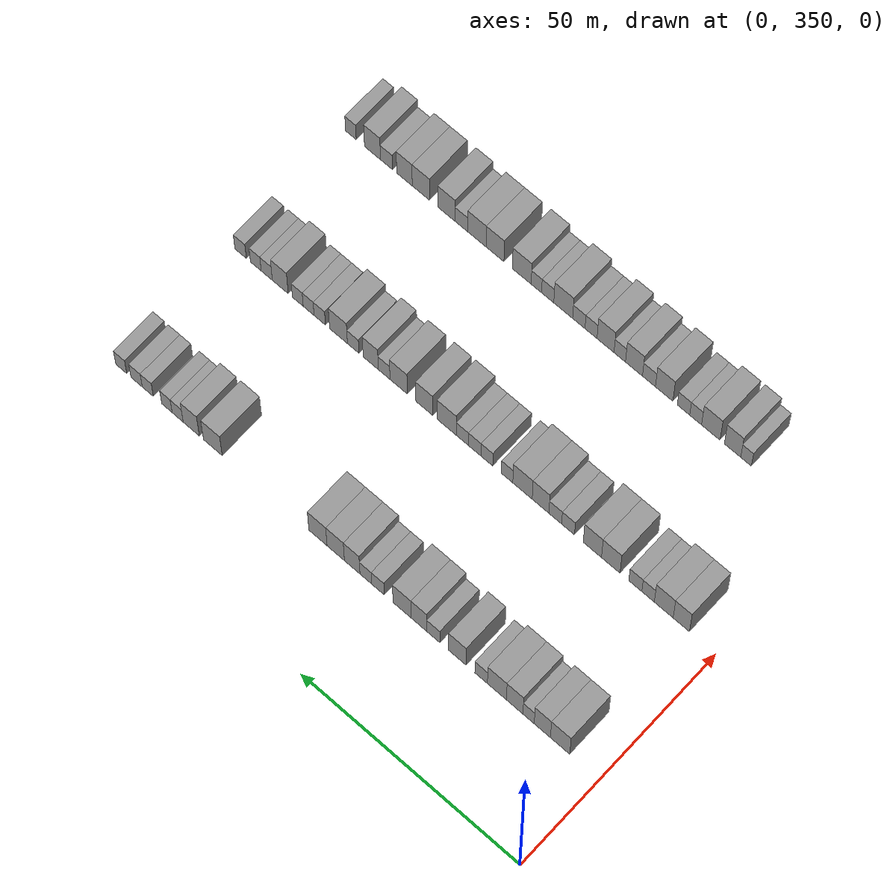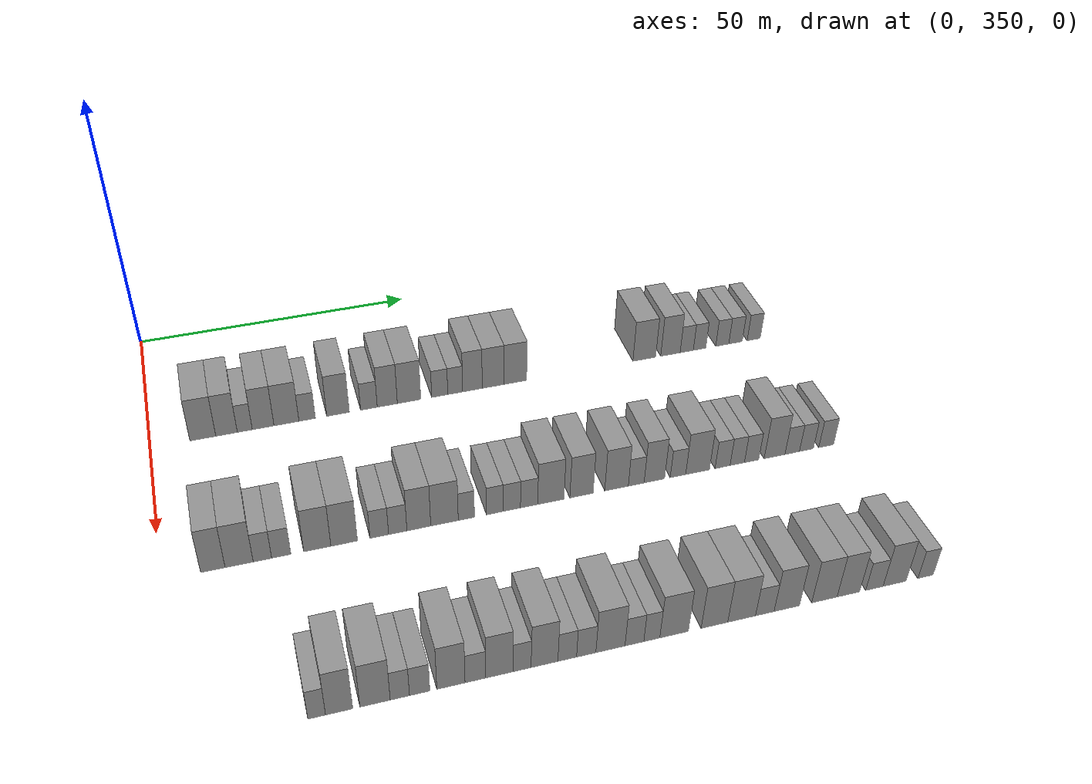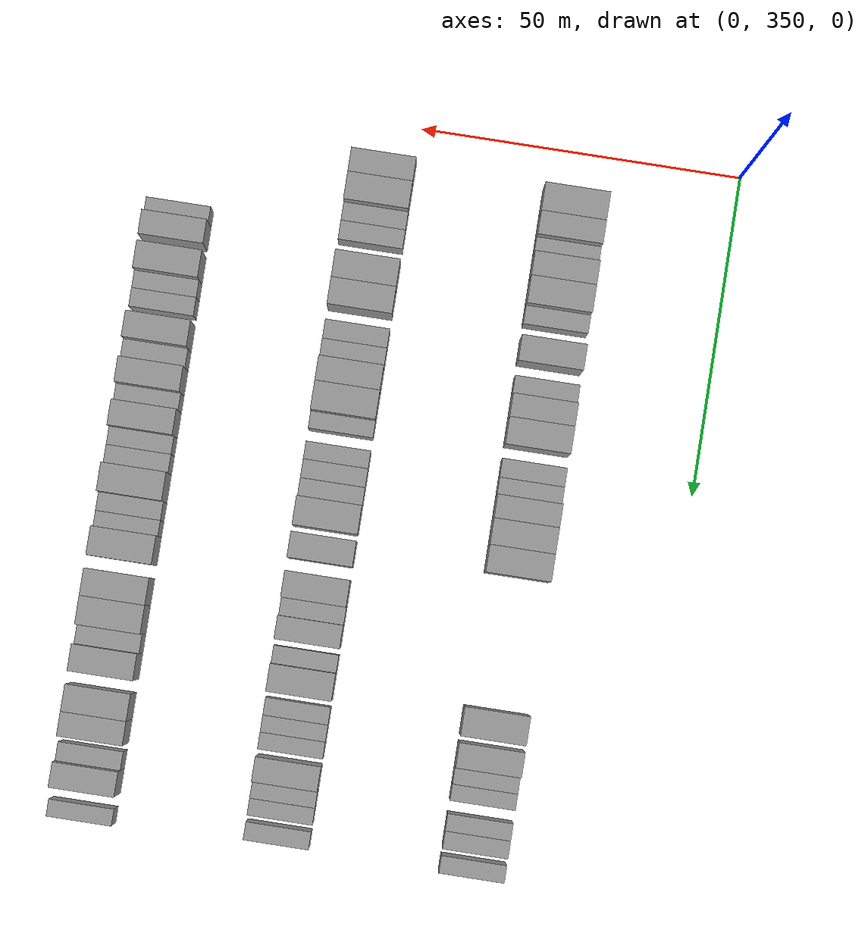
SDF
<sdf version="1.6">
 <world name="default">
  <model name="building_193">
   <static>1</static>
   <pose>25.0000 358.9053 0 0.000000 0.000000 0.000000</pose>
   <link name="link">
    <pose>0 0 4.50 0 0 0</pose>
    <collision name="collision"><geometry><box><size>10.0000 4.3668 9.0000</size></box></geometry></collision>
    <visual name="visual">
     <cast_shadows>0</cast_shadows>
     <geometry><box><size>10.0000 4.3668 9.0000</size></box></geometry>
     <material>
      <script>
       <uri>model://grey_wall/materials/scripts</uri>
       <uri>model://grey_wall/materials/textures</uri>
       <name>vrc/grey_wall</name>
      </script>
     </material>
    </visual>
   </link>
  </model>
  <model name="building_194">
   <static>1</static>
   <pose>25.0000 362.9234 0 0.000000 0.000000 0.000000</pose>
   <link name="link">
    <pose>0 0 4.50 0 0 0</pose>
    <collision name="collision"><geometry><box><size>10.0000 3.6693 9.0000</size></box></geometry></collision>
    <visual name="visual">
     <cast_shadows>0</cast_shadows>
     <geometry><box><size>10.0000 3.6693 9.0000</size></box></geometry>
     <material>
      <script>
       <uri>model://grey_wall/materials/scripts</uri>
       <uri>model://grey_wall/materials/textures</uri>
       <name>vrc/grey_wall</name>
      </script>
     </material>
    </visual>
   </link>
  </model>
  <model name="building_195">
   <static>1</static>
   <pose>25.0000 366.0402 0 0.000000 0.000000 0.000000</pose>
   <link name="link">
    <pose>0 0 3.00 0 0 0</pose>
    <collision name="collision"><geometry><box><size>10.0000 2.5643 6.0000</size></box></geometry></collision>
    <visual name="visual">
     <cast_shadows>0</cast_shadows>
     <geometry><box><size>10.0000 2.5643 6.0000</size></box></geometry>
     <material>
      <script>
       <uri>model://grey_wall/materials/scripts</uri>
       <uri>model://grey_wall/materials/textures</uri>
       <name>vrc/grey_wall</name>
      </script>
     </material>
    </visual>
   </link>
  </model>
  <model name="building_196">
   <static>1</static>
   <pose>25.0000 369.1925 0 0.000000 0.000000 0.000000</pose>
   <link name="link">
    <pose>0 0 4.50 0 0 0</pose>
    <collision name="collision"><geometry><box><size>10.0000 3.7402 9.0000</size></box></geometry></collision>
    <visual name="visual">
     <cast_shadows>0</cast_shadows>
     <geometry><box><size>10.0000 3.7402 9.0000</size></box></geometry>
     <material>
      <script>
       <uri>model://grey_wall/materials/scripts</uri>
       <uri>model://grey_wall/materials/textures</uri>
       <name>vrc/grey_wall</name>
      </script>
     </material>
    </visual>
   </link>
  </model>
  <model name="building_197">
   <static>1</static>
   <pose>25.0000 373.2283 0 0.000000 0.000000 0.000000</pose>
   <link name="link">
    <pose>0 0 4.50 0 0 0</pose>
    <collision name="collision"><geometry><box><size>10.0000 4.3314 9.0000</size></box></geometry></collision>
    <visual name="visual">
     <cast_shadows>0</cast_shadows>
     <geometry><box><size>10.0000 4.3314 9.0000</size></box></geometry>
     <material>
      <script>
       <uri>model://grey_wall/materials/scripts</uri>
       <uri>model://grey_wall/materials/textures</uri>
       <name>vrc/grey_wall</name>
      </script>
     </material>
    </visual>
   </link>
  </model>
  <model name="building_198">
   <static>1</static>
   <pose>25.0000 376.8318 0 0.000000 0.000000 0.000000</pose>
   <link name="link">
    <pose>0 0 3.00 0 0 0</pose>
    <collision name="collision"><geometry><box><size>10.0000 2.8757 6.0000</size></box></geometry></collision>
    <visual name="visual">
     <cast_shadows>0</cast_shadows>
     <geometry><box><size>10.0000 2.8757 6.0000</size></box></geometry>
     <material>
      <script>
       <uri>model://grey_wall/materials/scripts</uri>
       <uri>model://grey_wall/materials/textures</uri>
       <name>vrc/grey_wall</name>
      </script>
     </material>
    </visual>
   </link>
  </model>
  <model name="building_199">
   <static>1</static>
   <pose>25.0000 382.2647 0 0.000000 0.000000 0.000000</pose>
   <link name="link">
    <pose>0 0 4.50 0 0 0</pose>
    <collision name="collision"><geometry><box><size>10.0000 3.9901 9.0000</size></box></geometry></collision>
    <visual name="visual">
     <cast_shadows>0</cast_shadows>
     <geometry><box><size>10.0000 3.9901 9.0000</size></box></geometry>
     <material>
      <script>
       <uri>model://grey_wall/materials/scripts</uri>
       <uri>model://grey_wall/materials/textures</uri>
       <name>vrc/grey_wall</name>
      </script>
     </material>
    </visual>
   </link>
  </model>
  <model name="building_200">
   <static>1</static>
   <pose>25.0000 387.7512 0 0.000000 0.000000 0.000000</pose>
   <link name="link">
    <pose>0 0 3.00 0 0 0</pose>
    <collision name="collision"><geometry><box><size>10.0000 2.9829 6.0000</size></box></geometry></collision>
    <visual name="visual">
     <cast_shadows>0</cast_shadows>
     <geometry><box><size>10.0000 2.9829 6.0000</size></box></geometry>
     <material>
      <script>
       <uri>model://grey_wall/materials/scripts</uri>
       <uri>model://grey_wall/materials/textures</uri>
       <name>vrc/grey_wall</name>
      </script>
     </material>
    </visual>
   </link>
  </model>
  <model name="building_201">
   <static>1</static>
   <pose>25.0000 391.0484 0 0.000000 0.000000 0.000000</pose>
   <link name="link">
    <pose>0 0 4.50 0 0 0</pose>
    <collision name="collision"><geometry><box><size>10.0000 3.6115 9.0000</size></box></geometry></collision>
    <visual name="visual">
     <cast_shadows>0</cast_shadows>
     <geometry><box><size>10.0000 3.6115 9.0000</size></box></geometry>
     <material>
      <script>
       <uri>model://grey_wall/materials/scripts</uri>
       <uri>model://grey_wall/materials/textures</uri>
       <name>vrc/grey_wall</name>
      </script>
     </material>
    </visual>
   </link>
  </model>
  <model name="building_202">
   <static>1</static>
   <pose>25.0000 394.9687 0 0.000000 0.000000 0.000000</pose>
   <link name="link">
    <pose>0 0 4.50 0 0 0</pose>
    <collision name="collision"><geometry><box><size>10.0000 4.2291 9.0000</size></box></geometry></collision>
    <visual name="visual">
     <cast_shadows>0</cast_shadows>
     <geometry><box><size>10.0000 4.2291 9.0000</size></box></geometry>
     <material>
      <script>
       <uri>model://grey_wall/materials/scripts</uri>
       <uri>model://grey_wall/materials/textures</uri>
       <name>vrc/grey_wall</name>
      </script>
     </material>
    </visual>
   </link>
  </model>
  <model name="building_203">
   <static>1</static>
   <pose>25.0000 400.5490 0 0.000000 0.000000 0.000000</pose>
   <link name="link">
    <pose>0 0 3.00 0 0 0</pose>
    <collision name="collision"><geometry><box><size>10.0000 2.9315 6.0000</size></box></geometry></collision>
    <visual name="visual">
     <cast_shadows>0</cast_shadows>
     <geometry><box><size>10.0000 2.9315 6.0000</size></box></geometry>
     <material>
      <script>
       <uri>model://grey_wall/materials/scripts</uri>
       <uri>model://grey_wall/materials/textures</uri>
       <name>vrc/grey_wall</name>
      </script>
     </material>
    </visual>
   </link>
  </model>
  <model name="building_204">
   <static>1</static>
   <pose>25.0000 403.3842 0 0.000000 0.000000 0.000000</pose>
   <link name="link">
    <pose>0 0 3.00 0 0 0</pose>
    <collision name="collision"><geometry><box><size>10.0000 2.7390 6.0000</size></box></geometry></collision>
    <visual name="visual">
     <cast_shadows>0</cast_shadows>
     <geometry><box><size>10.0000 2.7390 6.0000</size></box></geometry>
     <material>
      <script>
       <uri>model://grey_wall/materials/scripts</uri>
       <uri>model://grey_wall/materials/textures</uri>
       <name>vrc/grey_wall</name>
      </script>
     </material>
    </visual>
   </link>
  </model>
  <model name="building_205">
   <static>1</static>
   <pose>25.0000 406.5617 0 0.000000 0.000000 0.000000</pose>
   <link name="link">
    <pose>0 0 4.50 0 0 0</pose>
    <collision name="collision"><geometry><box><size>10.0000 3.6159 9.0000</size></box></geometry></collision>
    <visual name="visual">
     <cast_shadows>0</cast_shadows>
     <geometry><box><size>10.0000 3.6159 9.0000</size></box></geometry>
     <material>
      <script>
       <uri>model://grey_wall/materials/scripts</uri>
       <uri>model://grey_wall/materials/textures</uri>
       <name>vrc/grey_wall</name>
      </script>
     </material>
    </visual>
   </link>
  </model>
  <model name="building_206">
   <static>1</static>
   <pose>25.0000 410.4006 0 0.000000 0.000000 0.000000</pose>
   <link name="link">
    <pose>0 0 4.50 0 0 0</pose>
    <collision name="collision"><geometry><box><size>10.0000 4.0619 9.0000</size></box></geometry></collision>
    <visual name="visual">
     <cast_shadows>0</cast_shadows>
     <geometry><box><size>10.0000 4.0619 9.0000</size></box></geometry>
     <material>
      <script>
       <uri>model://grey_wall/materials/scripts</uri>
       <uri>model://grey_wall/materials/textures</uri>
       <name>vrc/grey_wall</name>
      </script>
     </material>
    </visual>
   </link>
  </model>
  <model name="building_207">
   <static>1</static>
   <pose>25.0000 414.5550 0 0.000000 0.000000 0.000000</pose>
   <link name="link">
    <pose>0 0 4.50 0 0 0</pose>
    <collision name="collision"><geometry><box><size>10.0000 4.2469 9.0000</size></box></geometry></collision>
    <visual name="visual">
     <cast_shadows>0</cast_shadows>
     <geometry><box><size>10.0000 4.2469 9.0000</size></box></geometry>
     <material>
      <script>
       <uri>model://grey_wall/materials/scripts</uri>
       <uri>model://grey_wall/materials/textures</uri>
       <name>vrc/grey_wall</name>
      </script>
     </material>
    </visual>
   </link>
  </model>
  <model name="building_208">
   <static>1</static>
   <pose>25.0000 439.3719 0 0.000000 0.000000 0.000000</pose>
   <link name="link">
    <pose>0 0 4.50 0 0 0</pose>
    <collision name="collision"><geometry><box><size>10.0000 4.4623 9.0000</size></box></geometry></collision>
    <visual name="visual">
     <cast_shadows>0</cast_shadows>
     <geometry><box><size>10.0000 4.4623 9.0000</size></box></geometry>
     <material>
      <script>
       <uri>model://grey_wall/materials/scripts</uri>
       <uri>model://grey_wall/materials/textures</uri>
       <name>vrc/grey_wall</name>
      </script>
     </material>
    </visual>
   </link>
  </model>
  <model name="building_209">
   <static>1</static>
   <pose>25.0000 444.5277 0 0.000000 0.000000 0.000000</pose>
   <link name="link">
    <pose>0 0 4.50 0 0 0</pose>
    <collision name="collision"><geometry><box><size>10.0000 3.8493 9.0000</size></box></geometry></collision>
    <visual name="visual">
     <cast_shadows>0</cast_shadows>
     <geometry><box><size>10.0000 3.8493 9.0000</size></box></geometry>
     <material>
      <script>
       <uri>model://grey_wall/materials/scripts</uri>
       <uri>model://grey_wall/materials/textures</uri>
       <name>vrc/grey_wall</name>
      </script>
     </material>
    </visual>
   </link>
  </model>
  <model name="building_210">
   <static>1</static>
   <pose>25.0000 447.7719 0 0.000000 0.000000 0.000000</pose>
   <link name="link">
    <pose>0 0 3.00 0 0 0</pose>
    <collision name="collision"><geometry><box><size>10.0000 2.6390 6.0000</size></box></geometry></collision>
    <visual name="visual">
     <cast_shadows>0</cast_shadows>
     <geometry><box><size>10.0000 2.6390 6.0000</size></box></geometry>
     <material>
      <script>
       <uri>model://grey_wall/materials/scripts</uri>
       <uri>model://grey_wall/materials/textures</uri>
       <name>vrc/grey_wall</name>
      </script>
     </material>
    </visual>
   </link>
  </model>
  <model name="building_211">
   <static>1</static>
   <pose>25.0000 450.3410 0 0.000000 0.000000 0.000000</pose>
   <link name="link">
    <pose>0 0 3.00 0 0 0</pose>
    <collision name="collision"><geometry><box><size>10.0000 2.4993 6.0000</size></box></geometry></collision>
    <visual name="visual">
     <cast_shadows>0</cast_shadows>
     <geometry><box><size>10.0000 2.4993 6.0000</size></box></geometry>
     <material>
      <script>
       <uri>model://grey_wall/materials/scripts</uri>
       <uri>model://grey_wall/materials/textures</uri>
       <name>vrc/grey_wall</name>
      </script>
     </material>
    </visual>
   </link>
  </model>
  <model name="building_212">
   <static>1</static>
   <pose>25.0000 454.9144 0 0.000000 0.000000 0.000000</pose>
   <link name="link">
    <pose>0 0 3.00 0 0 0</pose>
    <collision name="collision"><geometry><box><size>10.0000 2.6476 6.0000</size></box></geometry></collision>
    <visual name="visual">
     <cast_shadows>0</cast_shadows>
     <geometry><box><size>10.0000 2.6476 6.0000</size></box></geometry>
     <material>
      <script>
       <uri>model://grey_wall/materials/scripts</uri>
       <uri>model://grey_wall/materials/textures</uri>
       <name>vrc/grey_wall</name>
      </script>
     </material>
    </visual>
   </link>
  </model>
  <model name="building_213">
   <static>1</static>
   <pose>25.0000 457.6052 0 0.000000 0.000000 0.000000</pose>
   <link name="link">
    <pose>0 0 3.00 0 0 0</pose>
    <collision name="collision"><geometry><box><size>10.0000 2.7340 6.0000</size></box></geometry></collision>
    <visual name="visual">
     <cast_shadows>0</cast_shadows>
     <geometry><box><size>10.0000 2.7340 6.0000</size></box></geometry>
     <material>
      <script>
       <uri>model://grey_wall/materials/scripts</uri>
       <uri>model://grey_wall/materials/textures</uri>
       <name>vrc/grey_wall</name>
      </script>
     </material>
    </visual>
   </link>
  </model>
  <model name="building_214">
   <static>1</static>
   <pose>25.0000 461.3113 0 0.000000 0.000000 0.000000</pose>
   <link name="link">
    <pose>0 0 3.00 0 0 0</pose>
    <collision name="collision"><geometry><box><size>10.0000 2.6782 6.0000</size></box></geometry></collision>
    <visual name="visual">
     <cast_shadows>0</cast_shadows>
     <geometry><box><size>10.0000 2.6782 6.0000</size></box></geometry>
     <material>
      <script>
       <uri>model://grey_wall/materials/scripts</uri>
       <uri>model://grey_wall/materials/textures</uri>
       <name>vrc/grey_wall</name>
      </script>
     </material>
    </visual>
   </link>
  </model>
  <model name="building_426">
   <static>1</static>
   <pose>55.0000 357.8667 0 0.000000 0.000000 0.000000</pose>
   <link name="link">
    <pose>0 0 4.50 0 0 0</pose>
    <collision name="collision"><geometry><box><size>10.0000 3.6962 9.0000</size></box></geometry></collision>
    <visual name="visual">
     <cast_shadows>0</cast_shadows>
     <geometry><box><size>10.0000 3.6962 9.0000</size></box></geometry>
     <material>
      <script>
       <uri>model://grey_wall/materials/scripts</uri>
       <uri>model://grey_wall/materials/textures</uri>
       <name>vrc/grey_wall</name>
      </script>
     </material>
    </visual>
   </link>
  </model>
  <model name="building_427">
   <static>1</static>
   <pose>55.0000 361.8536 0 0.000000 0.000000 0.000000</pose>
   <link name="link">
    <pose>0 0 4.50 0 0 0</pose>
    <collision name="collision"><geometry><box><size>10.0000 4.2776 9.0000</size></box></geometry></collision>
    <visual name="visual">
     <cast_shadows>0</cast_shadows>
     <geometry><box><size>10.0000 4.2776 9.0000</size></box></geometry>
     <material>
      <script>
       <uri>model://grey_wall/materials/scripts</uri>
       <uri>model://grey_wall/materials/textures</uri>
       <name>vrc/grey_wall</name>
      </script>
     </material>
    </visual>
   </link>
  </model>
  <model name="building_428">
   <static>1</static>
   <pose>55.0000 365.4075 0 0.000000 0.000000 0.000000</pose>
   <link name="link">
    <pose>0 0 3.00 0 0 0</pose>
    <collision name="collision"><geometry><box><size>10.0000 2.8302 6.0000</size></box></geometry></collision>
    <visual name="visual">
     <cast_shadows>0</cast_shadows>
     <geometry><box><size>10.0000 2.8302 6.0000</size></box></geometry>
     <material>
      <script>
       <uri>model://grey_wall/materials/scripts</uri>
       <uri>model://grey_wall/materials/textures</uri>
       <name>vrc/grey_wall</name>
      </script>
     </material>
    </visual>
   </link>
  </model>
  <model name="building_429">
   <static>1</static>
   <pose>55.0000 368.3033 0 0.000000 0.000000 0.000000</pose>
   <link name="link">
    <pose>0 0 3.00 0 0 0</pose>
    <collision name="collision"><geometry><box><size>10.0000 2.9615 6.0000</size></box></geometry></collision>
    <visual name="visual">
     <cast_shadows>0</cast_shadows>
     <geometry><box><size>10.0000 2.9615 6.0000</size></box></geometry>
     <material>
      <script>
       <uri>model://grey_wall/materials/scripts</uri>
       <uri>model://grey_wall/materials/textures</uri>
       <name>vrc/grey_wall</name>
      </script>
     </material>
    </visual>
   </link>
  </model>
  <model name="building_430">
   <static>1</static>
   <pose>55.0000 373.9060 0 0.000000 0.000000 0.000000</pose>
   <link name="link">
    <pose>0 0 4.50 0 0 0</pose>
    <collision name="collision"><geometry><box><size>10.0000 4.2438 9.0000</size></box></geometry></collision>
    <visual name="visual">
     <cast_shadows>0</cast_shadows>
     <geometry><box><size>10.0000 4.2438 9.0000</size></box></geometry>
     <material>
      <script>
       <uri>model://grey_wall/materials/scripts</uri>
       <uri>model://grey_wall/materials/textures</uri>
       <name>vrc/grey_wall</name>
      </script>
     </material>
    </visual>
   </link>
  </model>
  <model name="building_431">
   <static>1</static>
   <pose>55.0000 378.1146 0 0.000000 0.000000 0.000000</pose>
   <link name="link">
    <pose>0 0 4.50 0 0 0</pose>
    <collision name="collision"><geometry><box><size>10.0000 4.1735 9.0000</size></box></geometry></collision>
    <visual name="visual">
     <cast_shadows>0</cast_shadows>
     <geometry><box><size>10.0000 4.1735 9.0000</size></box></geometry>
     <material>
      <script>
       <uri>model://grey_wall/materials/scripts</uri>
       <uri>model://grey_wall/materials/textures</uri>
       <name>vrc/grey_wall</name>
      </script>
     </material>
    </visual>
   </link>
  </model>
  <model name="building_432">
   <static>1</static>
   <pose>55.0000 383.6836 0 0.000000 0.000000 0.000000</pose>
   <link name="link">
    <pose>0 0 3.00 0 0 0</pose>
    <collision name="collision"><geometry><box><size>10.0000 2.9644 6.0000</size></box></geometry></collision>
    <visual name="visual">
     <cast_shadows>0</cast_shadows>
     <geometry><box><size>10.0000 2.9644 6.0000</size></box></geometry>
     <material>
      <script>
       <uri>model://grey_wall/materials/scripts</uri>
       <uri>model://grey_wall/materials/textures</uri>
       <name>vrc/grey_wall</name>
      </script>
     </material>
    </visual>
   </link>
  </model>
  <model name="building_433">
   <static>1</static>
   <pose>55.0000 386.6343 0 0.000000 0.000000 0.000000</pose>
   <link name="link">
    <pose>0 0 3.00 0 0 0</pose>
    <collision name="collision"><geometry><box><size>10.0000 2.9370 6.0000</size></box></geometry></collision>
    <visual name="visual">
     <cast_shadows>0</cast_shadows>
     <geometry><box><size>10.0000 2.9370 6.0000</size></box></geometry>
     <material>
      <script>
       <uri>model://grey_wall/materials/scripts</uri>
       <uri>model://grey_wall/materials/textures</uri>
       <name>vrc/grey_wall</name>
      </script>
     </material>
    </visual>
   </link>
  </model>
  <model name="building_434">
   <static>1</static>
   <pose>55.0000 390.0293 0 0.000000 0.000000 0.000000</pose>
   <link name="link">
    <pose>0 0 4.50 0 0 0</pose>
    <collision name="collision"><geometry><box><size>10.0000 3.8531 9.0000</size></box></geometry></collision>
    <visual name="visual">
     <cast_shadows>0</cast_shadows>
     <geometry><box><size>10.0000 3.8531 9.0000</size></box></geometry>
     <material>
      <script>
       <uri>model://grey_wall/materials/scripts</uri>
       <uri>model://grey_wall/materials/textures</uri>
       <name>vrc/grey_wall</name>
      </script>
     </material>
    </visual>
   </link>
  </model>
  <model name="building_435">
   <static>1</static>
   <pose>55.0000 394.2009 0 0.000000 0.000000 0.000000</pose>
   <link name="link">
    <pose>0 0 4.50 0 0 0</pose>
    <collision name="collision"><geometry><box><size>10.0000 4.4900 9.0000</size></box></geometry></collision>
    <visual name="visual">
     <cast_shadows>0</cast_shadows>
     <geometry><box><size>10.0000 4.4900 9.0000</size></box></geometry>
     <material>
      <script>
       <uri>model://grey_wall/materials/scripts</uri>
       <uri>model://grey_wall/materials/textures</uri>
       <name>vrc/grey_wall</name>
      </script>
     </material>
    </visual>
   </link>
  </model>
  <model name="building_436">
   <static>1</static>
   <pose>55.0000 397.7735 0 0.000000 0.000000 0.000000</pose>
   <link name="link">
    <pose>0 0 3.00 0 0 0</pose>
    <collision name="collision"><geometry><box><size>10.0000 2.6552 6.0000</size></box></geometry></collision>
    <visual name="visual">
     <cast_shadows>0</cast_shadows>
     <geometry><box><size>10.0000 2.6552 6.0000</size></box></geometry>
     <material>
      <script>
       <uri>model://grey_wall/materials/scripts</uri>
       <uri>model://grey_wall/materials/textures</uri>
       <name>vrc/grey_wall</name>
      </script>
     </material>
    </visual>
   </link>
  </model>
  <model name="building_437">
   <static>1</static>
   <pose>55.0000 402.4761 0 0.000000 0.000000 0.000000</pose>
   <link name="link">
    <pose>0 0 3.00 0 0 0</pose>
    <collision name="collision"><geometry><box><size>10.0000 2.7500 6.0000</size></box></geometry></collision>
    <visual name="visual">
     <cast_shadows>0</cast_shadows>
     <geometry><box><size>10.0000 2.7500 6.0000</size></box></geometry>
     <material>
      <script>
       <uri>model://grey_wall/materials/scripts</uri>
       <uri>model://grey_wall/materials/textures</uri>
       <name>vrc/grey_wall</name>
      </script>
     </material>
    </visual>
   </link>
  </model>
  <model name="building_438">
   <static>1</static>
   <pose>55.0000 405.3012 0 0.000000 0.000000 0.000000</pose>
   <link name="link">
    <pose>0 0 3.00 0 0 0</pose>
    <collision name="collision"><geometry><box><size>10.0000 2.9002 6.0000</size></box></geometry></collision>
    <visual name="visual">
     <cast_shadows>0</cast_shadows>
     <geometry><box><size>10.0000 2.9002 6.0000</size></box></geometry>
     <material>
      <script>
       <uri>model://grey_wall/materials/scripts</uri>
       <uri>model://grey_wall/materials/textures</uri>
       <name>vrc/grey_wall</name>
      </script>
     </material>
    </visual>
   </link>
  </model>
  <model name="building_439">
   <static>1</static>
   <pose>55.0000 408.1891 0 0.000000 0.000000 0.000000</pose>
   <link name="link">
    <pose>0 0 3.00 0 0 0</pose>
    <collision name="collision"><geometry><box><size>10.0000 2.8757 6.0000</size></box></geometry></collision>
    <visual name="visual">
     <cast_shadows>0</cast_shadows>
     <geometry><box><size>10.0000 2.8757 6.0000</size></box></geometry>
     <material>
      <script>
       <uri>model://grey_wall/materials/scripts</uri>
       <uri>model://grey_wall/materials/textures</uri>
       <name>vrc/grey_wall</name>
      </script>
     </material>
    </visual>
   </link>
  </model>
  <model name="building_440">
   <static>1</static>
   <pose>55.0000 411.8631 0 0.000000 0.000000 0.000000</pose>
   <link name="link">
    <pose>0 0 4.50 0 0 0</pose>
    <collision name="collision"><geometry><box><size>10.0000 4.4723 9.0000</size></box></geometry></collision>
    <visual name="visual">
     <cast_shadows>0</cast_shadows>
     <geometry><box><size>10.0000 4.4723 9.0000</size></box></geometry>
     <material>
      <script>
       <uri>model://grey_wall/materials/scripts</uri>
       <uri>model://grey_wall/materials/textures</uri>
       <name>vrc/grey_wall</name>
      </script>
     </material>
    </visual>
   </link>
  </model>
  <model name="building_441">
   <static>1</static>
   <pose>55.0000 417.0918 0 0.000000 0.000000 0.000000</pose>
   <link name="link">
    <pose>0 0 4.50 0 0 0</pose>
    <collision name="collision"><geometry><box><size>10.0000 3.9852 9.0000</size></box></geometry></collision>
    <visual name="visual">
     <cast_shadows>0</cast_shadows>
     <geometry><box><size>10.0000 3.9852 9.0000</size></box></geometry>
     <material>
      <script>
       <uri>model://grey_wall/materials/scripts</uri>
       <uri>model://grey_wall/materials/textures</uri>
       <name>vrc/grey_wall</name>
      </script>
     </material>
    </visual>
   </link>
  </model>
  <model name="building_442">
   <static>1</static>
   <pose>55.0000 423.1290 0 0.000000 0.000000 0.000000</pose>
   <link name="link">
    <pose>0 0 4.50 0 0 0</pose>
    <collision name="collision"><geometry><box><size>10.0000 4.0891 9.0000</size></box></geometry></collision>
    <visual name="visual">
     <cast_shadows>0</cast_shadows>
     <geometry><box><size>10.0000 4.0891 9.0000</size></box></geometry>
     <material>
      <script>
       <uri>model://grey_wall/materials/scripts</uri>
       <uri>model://grey_wall/materials/textures</uri>
       <name>vrc/grey_wall</name>
      </script>
     </material>
    </visual>
   </link>
  </model>
  <model name="building_443">
   <static>1</static>
   <pose>55.0000 426.5500 0 0.000000 0.000000 0.000000</pose>
   <link name="link">
    <pose>0 0 3.00 0 0 0</pose>
    <collision name="collision"><geometry><box><size>10.0000 2.7530 6.0000</size></box></geometry></collision>
    <visual name="visual">
     <cast_shadows>0</cast_shadows>
     <geometry><box><size>10.0000 2.7530 6.0000</size></box></geometry>
     <material>
      <script>
       <uri>model://grey_wall/materials/scripts</uri>
       <uri>model://grey_wall/materials/textures</uri>
       <name>vrc/grey_wall</name>
      </script>
     </material>
    </visual>
   </link>
  </model>
  <model name="building_444">
   <static>1</static>
   <pose>55.0000 429.7274 0 0.000000 0.000000 0.000000</pose>
   <link name="link">
    <pose>0 0 4.50 0 0 0</pose>
    <collision name="collision"><geometry><box><size>10.0000 3.6017 9.0000</size></box></geometry></collision>
    <visual name="visual">
     <cast_shadows>0</cast_shadows>
     <geometry><box><size>10.0000 3.6017 9.0000</size></box></geometry>
     <material>
      <script>
       <uri>model://grey_wall/materials/scripts</uri>
       <uri>model://grey_wall/materials/textures</uri>
       <name>vrc/grey_wall</name>
      </script>
     </material>
    </visual>
   </link>
  </model>
  <model name="building_445">
   <static>1</static>
   <pose>55.0000 433.8944 0 0.000000 0.000000 0.000000</pose>
   <link name="link">
    <pose>0 0 3.00 0 0 0</pose>
    <collision name="collision"><geometry><box><size>10.0000 2.7323 6.0000</size></box></geometry></collision>
    <visual name="visual">
     <cast_shadows>0</cast_shadows>
     <geometry><box><size>10.0000 2.7323 6.0000</size></box></geometry>
     <material>
      <script>
       <uri>model://grey_wall/materials/scripts</uri>
       <uri>model://grey_wall/materials/textures</uri>
       <name>vrc/grey_wall</name>
      </script>
     </material>
    </visual>
   </link>
  </model>
  <model name="building_446">
   <static>1</static>
   <pose>55.0000 437.3856 0 0.000000 0.000000 0.000000</pose>
   <link name="link">
    <pose>0 0 4.50 0 0 0</pose>
    <collision name="collision"><geometry><box><size>10.0000 4.2502 9.0000</size></box></geometry></collision>
    <visual name="visual">
     <cast_shadows>0</cast_shadows>
     <geometry><box><size>10.0000 4.2502 9.0000</size></box></geometry>
     <material>
      <script>
       <uri>model://grey_wall/materials/scripts</uri>
       <uri>model://grey_wall/materials/textures</uri>
       <name>vrc/grey_wall</name>
      </script>
     </material>
    </visual>
   </link>
  </model>
  <model name="building_447">
   <static>1</static>
   <pose>55.0000 441.8650 0 0.000000 0.000000 0.000000</pose>
   <link name="link">
    <pose>0 0 3.00 0 0 0</pose>
    <collision name="collision"><geometry><box><size>10.0000 2.7084 6.0000</size></box></geometry></collision>
    <visual name="visual">
     <cast_shadows>0</cast_shadows>
     <geometry><box><size>10.0000 2.7084 6.0000</size></box></geometry>
     <material>
      <script>
       <uri>model://grey_wall/materials/scripts</uri>
       <uri>model://grey_wall/materials/textures</uri>
       <name>vrc/grey_wall</name>
      </script>
     </material>
    </visual>
   </link>
  </model>
  <model name="building_448">
   <static>1</static>
   <pose>55.0000 444.5186 0 0.000000 0.000000 0.000000</pose>
   <link name="link">
    <pose>0 0 3.00 0 0 0</pose>
    <collision name="collision"><geometry><box><size>10.0000 2.5988 6.0000</size></box></geometry></collision>
    <visual name="visual">
     <cast_shadows>0</cast_shadows>
     <geometry><box><size>10.0000 2.5988 6.0000</size></box></geometry>
     <material>
      <script>
       <uri>model://grey_wall/materials/scripts</uri>
       <uri>model://grey_wall/materials/textures</uri>
       <name>vrc/grey_wall</name>
      </script>
     </material>
    </visual>
   </link>
  </model>
  <model name="building_449">
   <static>1</static>
   <pose>55.0000 447.1166 0 0.000000 0.000000 0.000000</pose>
   <link name="link">
    <pose>0 0 3.00 0 0 0</pose>
    <collision name="collision"><geometry><box><size>10.0000 2.5972 6.0000</size></box></geometry></collision>
    <visual name="visual">
     <cast_shadows>0</cast_shadows>
     <geometry><box><size>10.0000 2.5972 6.0000</size></box></geometry>
     <material>
      <script>
       <uri>model://grey_wall/materials/scripts</uri>
       <uri>model://grey_wall/materials/textures</uri>
       <name>vrc/grey_wall</name>
      </script>
     </material>
    </visual>
   </link>
  </model>
  <model name="building_450">
   <static>1</static>
   <pose>55.0000 451.3239 0 0.000000 0.000000 0.000000</pose>
   <link name="link">
    <pose>0 0 4.50 0 0 0</pose>
    <collision name="collision"><geometry><box><size>10.0000 3.8174 9.0000</size></box></geometry></collision>
    <visual name="visual">
     <cast_shadows>0</cast_shadows>
     <geometry><box><size>10.0000 3.8174 9.0000</size></box></geometry>
     <material>
      <script>
       <uri>model://grey_wall/materials/scripts</uri>
       <uri>model://grey_wall/materials/textures</uri>
       <name>vrc/grey_wall</name>
      </script>
     </material>
    </visual>
   </link>
  </model>
  <model name="building_451">
   <static>1</static>
   <pose>55.0000 454.5730 0 0.000000 0.000000 0.000000</pose>
   <link name="link">
    <pose>0 0 3.00 0 0 0</pose>
    <collision name="collision"><geometry><box><size>10.0000 2.6808 6.0000</size></box></geometry></collision>
    <visual name="visual">
     <cast_shadows>0</cast_shadows>
     <geometry><box><size>10.0000 2.6808 6.0000</size></box></geometry>
     <material>
      <script>
       <uri>model://grey_wall/materials/scripts</uri>
       <uri>model://grey_wall/materials/textures</uri>
       <name>vrc/grey_wall</name>
      </script>
     </material>
    </visual>
   </link>
  </model>
  <model name="building_452">
   <static>1</static>
   <pose>55.0000 457.2104 0 0.000000 0.000000 0.000000</pose>
   <link name="link">
    <pose>0 0 3.00 0 0 0</pose>
    <collision name="collision"><geometry><box><size>10.0000 2.5939 6.0000</size></box></geometry></collision>
    <visual name="visual">
     <cast_shadows>0</cast_shadows>
     <geometry><box><size>10.0000 2.5939 6.0000</size></box></geometry>
     <material>
      <script>
       <uri>model://grey_wall/materials/scripts</uri>
       <uri>model://grey_wall/materials/textures</uri>
       <name>vrc/grey_wall</name>
      </script>
     </material>
    </visual>
   </link>
  </model>
  <model name="building_453">
   <static>1</static>
   <pose>55.0000 460.8837 0 0.000000 0.000000 0.000000</pose>
   <link name="link">
    <pose>0 0 3.00 0 0 0</pose>
    <collision name="collision"><geometry><box><size>10.0000 2.7528 6.0000</size></box></geometry></collision>
    <visual name="visual">
     <cast_shadows>0</cast_shadows>
     <geometry><box><size>10.0000 2.7528 6.0000</size></box></geometry>
     <material>
      <script>
       <uri>model://grey_wall/materials/scripts</uri>
       <uri>model://grey_wall/materials/textures</uri>
       <name>vrc/grey_wall</name>
      </script>
     </material>
    </visual>
   </link>
  </model>
  <model name="building_646">
   <static>1</static>
   <pose>85.0000 369.0881 0 0.000000 0.000000 0.000000</pose>
   <link name="link">
    <pose>0 0 3.00 0 0 0</pose>
    <collision name="collision"><geometry><box><size>10.0000 2.4310 6.0000</size></box></geometry></collision>
    <visual name="visual">
     <cast_shadows>0</cast_shadows>
     <geometry><box><size>10.0000 2.4310 6.0000</size></box></geometry>
     <material>
      <script>
       <uri>model://grey_wall/materials/scripts</uri>
       <uri>model://grey_wall/materials/textures</uri>
       <name>vrc/grey_wall</name>
      </script>
     </material>
    </visual>
   </link>
  </model>
  <model name="building_647">
   <static>1</static>
   <pose>85.0000 372.1774 0 0.000000 0.000000 0.000000</pose>
   <link name="link">
    <pose>0 0 4.50 0 0 0</pose>
    <collision name="collision"><geometry><box><size>10.0000 3.7474 9.0000</size></box></geometry></collision>
    <visual name="visual">
     <cast_shadows>0</cast_shadows>
     <geometry><box><size>10.0000 3.7474 9.0000</size></box></geometry>
     <material>
      <script>
       <uri>model://grey_wall/materials/scripts</uri>
       <uri>model://grey_wall/materials/textures</uri>
       <name>vrc/grey_wall</name>
      </script>
     </material>
    </visual>
   </link>
  </model>
  <model name="building_648">
   <static>1</static>
   <pose>85.0000 377.1681 0 0.000000 0.000000 0.000000</pose>
   <link name="link">
    <pose>0 0 4.50 0 0 0</pose>
    <collision name="collision"><geometry><box><size>10.0000 4.2341 9.0000</size></box></geometry></collision>
    <visual name="visual">
     <cast_shadows>0</cast_shadows>
     <geometry><box><size>10.0000 4.2341 9.0000</size></box></geometry>
     <material>
      <script>
       <uri>model://grey_wall/materials/scripts</uri>
       <uri>model://grey_wall/materials/textures</uri>
       <name>vrc/grey_wall</name>
      </script>
     </material>
    </visual>
   </link>
  </model>
  <model name="building_649">
   <static>1</static>
   <pose>85.0000 380.6390 0 0.000000 0.000000 0.000000</pose>
   <link name="link">
    <pose>0 0 3.00 0 0 0</pose>
    <collision name="collision"><geometry><box><size>10.0000 2.7076 6.0000</size></box></geometry></collision>
    <visual name="visual">
     <cast_shadows>0</cast_shadows>
     <geometry><box><size>10.0000 2.7076 6.0000</size></box></geometry>
     <material>
      <script>
       <uri>model://grey_wall/materials/scripts</uri>
       <uri>model://grey_wall/materials/textures</uri>
       <name>vrc/grey_wall</name>
      </script>
     </material>
    </visual>
   </link>
  </model>
  <model name="building_650">
   <static>1</static>
   <pose>85.0000 383.4345 0 0.000000 0.000000 0.000000</pose>
   <link name="link">
    <pose>0 0 3.00 0 0 0</pose>
    <collision name="collision"><geometry><box><size>10.0000 2.8833 6.0000</size></box></geometry></collision>
    <visual name="visual">
     <cast_shadows>0</cast_shadows>
     <geometry><box><size>10.0000 2.8833 6.0000</size></box></geometry>
     <material>
      <script>
       <uri>model://grey_wall/materials/scripts</uri>
       <uri>model://grey_wall/materials/textures</uri>
       <name>vrc/grey_wall</name>
      </script>
     </material>
    </visual>
   </link>
  </model>
  <model name="building_651">
   <static>1</static>
   <pose>85.0000 387.8967 0 0.000000 0.000000 0.000000</pose>
   <link name="link">
    <pose>0 0 4.50 0 0 0</pose>
    <collision name="collision"><geometry><box><size>10.0000 4.0411 9.0000</size></box></geometry></collision>
    <visual name="visual">
     <cast_shadows>0</cast_shadows>
     <geometry><box><size>10.0000 4.0411 9.0000</size></box></geometry>
     <material>
      <script>
       <uri>model://grey_wall/materials/scripts</uri>
       <uri>model://grey_wall/materials/textures</uri>
       <name>vrc/grey_wall</name>
      </script>
     </material>
    </visual>
   </link>
  </model>
  <model name="building_652">
   <static>1</static>
   <pose>85.0000 391.4169 0 0.000000 0.000000 0.000000</pose>
   <link name="link">
    <pose>0 0 3.00 0 0 0</pose>
    <collision name="collision"><geometry><box><size>10.0000 2.9995 6.0000</size></box></geometry></collision>
    <visual name="visual">
     <cast_shadows>0</cast_shadows>
     <geometry><box><size>10.0000 2.9995 6.0000</size></box></geometry>
     <material>
      <script>
       <uri>model://grey_wall/materials/scripts</uri>
       <uri>model://grey_wall/materials/textures</uri>
       <name>vrc/grey_wall</name>
      </script>
     </material>
    </visual>
   </link>
  </model>
  <model name="building_653">
   <static>1</static>
   <pose>85.0000 394.8878 0 0.000000 0.000000 0.000000</pose>
   <link name="link">
    <pose>0 0 4.50 0 0 0</pose>
    <collision name="collision"><geometry><box><size>10.0000 3.9423 9.0000</size></box></geometry></collision>
    <visual name="visual">
     <cast_shadows>0</cast_shadows>
     <geometry><box><size>10.0000 3.9423 9.0000</size></box></geometry>
     <material>
      <script>
       <uri>model://grey_wall/materials/scripts</uri>
       <uri>model://grey_wall/materials/textures</uri>
       <name>vrc/grey_wall</name>
      </script>
     </material>
    </visual>
   </link>
  </model>
  <model name="building_654">
   <static>1</static>
   <pose>85.0000 398.1920 0 0.000000 0.000000 0.000000</pose>
   <link name="link">
    <pose>0 0 3.00 0 0 0</pose>
    <collision name="collision"><geometry><box><size>10.0000 2.6660 6.0000</size></box></geometry></collision>
    <visual name="visual">
     <cast_shadows>0</cast_shadows>
     <geometry><box><size>10.0000 2.6660 6.0000</size></box></geometry>
     <material>
      <script>
       <uri>model://grey_wall/materials/scripts</uri>
       <uri>model://grey_wall/materials/textures</uri>
       <name>vrc/grey_wall</name>
      </script>
     </material>
    </visual>
   </link>
  </model>
  <model name="building_655">
   <static>1</static>
   <pose>85.0000 401.5129 0 0.000000 0.000000 0.000000</pose>
   <link name="link">
    <pose>0 0 4.50 0 0 0</pose>
    <collision name="collision"><geometry><box><size>10.0000 3.9759 9.0000</size></box></geometry></collision>
    <visual name="visual">
     <cast_shadows>0</cast_shadows>
     <geometry><box><size>10.0000 3.9759 9.0000</size></box></geometry>
     <material>
      <script>
       <uri>model://grey_wall/materials/scripts</uri>
       <uri>model://grey_wall/materials/textures</uri>
       <name>vrc/grey_wall</name>
      </script>
     </material>
    </visual>
   </link>
  </model>
  <model name="building_656">
   <static>1</static>
   <pose>85.0000 404.8990 0 0.000000 0.000000 0.000000</pose>
   <link name="link">
    <pose>0 0 3.00 0 0 0</pose>
    <collision name="collision"><geometry><box><size>10.0000 2.7963 6.0000</size></box></geometry></collision>
    <visual name="visual">
     <cast_shadows>0</cast_shadows>
     <geometry><box><size>10.0000 2.7963 6.0000</size></box></geometry>
     <material>
      <script>
       <uri>model://grey_wall/materials/scripts</uri>
       <uri>model://grey_wall/materials/textures</uri>
       <name>vrc/grey_wall</name>
      </script>
     </material>
    </visual>
   </link>
  </model>
  <model name="building_657">
   <static>1</static>
   <pose>85.0000 407.7478 0 0.000000 0.000000 0.000000</pose>
   <link name="link">
    <pose>0 0 3.00 0 0 0</pose>
    <collision name="collision"><geometry><box><size>10.0000 2.9014 6.0000</size></box></geometry></collision>
    <visual name="visual">
     <cast_shadows>0</cast_shadows>
     <geometry><box><size>10.0000 2.9014 6.0000</size></box></geometry>
     <material>
      <script>
       <uri>model://grey_wall/materials/scripts</uri>
       <uri>model://grey_wall/materials/textures</uri>
       <name>vrc/grey_wall</name>
      </script>
     </material>
    </visual>
   </link>
  </model>
  <model name="building_658">
   <static>1</static>
   <pose>85.0000 411.4063 0 0.000000 0.000000 0.000000</pose>
   <link name="link">
    <pose>0 0 4.50 0 0 0</pose>
    <collision name="collision"><geometry><box><size>10.0000 4.4156 9.0000</size></box></geometry></collision>
    <visual name="visual">
     <cast_shadows>0</cast_shadows>
     <geometry><box><size>10.0000 4.4156 9.0000</size></box></geometry>
     <material>
      <script>
       <uri>model://grey_wall/materials/scripts</uri>
       <uri>model://grey_wall/materials/textures</uri>
       <name>vrc/grey_wall</name>
      </script>
     </material>
    </visual>
   </link>
  </model>
  <model name="building_659">
   <static>1</static>
   <pose>85.0000 415.0529 0 0.000000 0.000000 0.000000</pose>
   <link name="link">
    <pose>0 0 3.00 0 0 0</pose>
    <collision name="collision"><geometry><box><size>10.0000 2.8777 6.0000</size></box></geometry></collision>
    <visual name="visual">
     <cast_shadows>0</cast_shadows>
     <geometry><box><size>10.0000 2.8777 6.0000</size></box></geometry>
     <material>
      <script>
       <uri>model://grey_wall/materials/scripts</uri>
       <uri>model://grey_wall/materials/textures</uri>
       <name>vrc/grey_wall</name>
      </script>
     </material>
    </visual>
   </link>
  </model>
  <model name="building_660">
   <static>1</static>
   <pose>85.0000 417.7187 0 0.000000 0.000000 0.000000</pose>
   <link name="link">
    <pose>0 0 3.00 0 0 0</pose>
    <collision name="collision"><geometry><box><size>10.0000 2.4538 6.0000</size></box></geometry></collision>
    <visual name="visual">
     <cast_shadows>0</cast_shadows>
     <geometry><box><size>10.0000 2.4538 6.0000</size></box></geometry>
     <material>
      <script>
       <uri>model://grey_wall/materials/scripts</uri>
       <uri>model://grey_wall/materials/textures</uri>
       <name>vrc/grey_wall</name>
      </script>
     </material>
    </visual>
   </link>
  </model>
  <model name="building_661">
   <static>1</static>
   <pose>85.0000 421.1607 0 0.000000 0.000000 0.000000</pose>
   <link name="link">
    <pose>0 0 4.50 0 0 0</pose>
    <collision name="collision"><geometry><box><size>10.0000 4.4301 9.0000</size></box></geometry></collision>
    <visual name="visual">
     <cast_shadows>0</cast_shadows>
     <geometry><box><size>10.0000 4.4301 9.0000</size></box></geometry>
     <material>
      <script>
       <uri>model://grey_wall/materials/scripts</uri>
       <uri>model://grey_wall/materials/textures</uri>
       <name>vrc/grey_wall</name>
      </script>
     </material>
    </visual>
   </link>
  </model>
  <model name="building_662">
   <static>1</static>
   <pose>85.0000 427.4719 0 0.000000 0.000000 0.000000</pose>
   <link name="link">
    <pose>0 0 4.50 0 0 0</pose>
    <collision name="collision"><geometry><box><size>10.0000 4.1924 9.0000</size></box></geometry></collision>
    <visual name="visual">
     <cast_shadows>0</cast_shadows>
     <geometry><box><size>10.0000 4.1924 9.0000</size></box></geometry>
     <material>
      <script>
       <uri>model://grey_wall/materials/scripts</uri>
       <uri>model://grey_wall/materials/textures</uri>
       <name>vrc/grey_wall</name>
      </script>
     </material>
    </visual>
   </link>
  </model>
  <model name="building_663">
   <static>1</static>
   <pose>85.0000 431.7773 0 0.000000 0.000000 0.000000</pose>
   <link name="link">
    <pose>0 0 4.50 0 0 0</pose>
    <collision name="collision"><geometry><box><size>10.0000 4.4183 9.0000</size></box></geometry></collision>
    <visual name="visual">
     <cast_shadows>0</cast_shadows>
     <geometry><box><size>10.0000 4.4183 9.0000</size></box></geometry>
     <material>
      <script>
       <uri>model://grey_wall/materials/scripts</uri>
       <uri>model://grey_wall/materials/textures</uri>
       <name>vrc/grey_wall</name>
      </script>
     </material>
    </visual>
   </link>
  </model>
  <model name="building_664">
   <static>1</static>
   <pose>85.0000 435.4705 0 0.000000 0.000000 0.000000</pose>
   <link name="link">
    <pose>0 0 3.00 0 0 0</pose>
    <collision name="collision"><geometry><box><size>10.0000 2.9681 6.0000</size></box></geometry></collision>
    <visual name="visual">
     <cast_shadows>0</cast_shadows>
     <geometry><box><size>10.0000 2.9681 6.0000</size></box></geometry>
     <material>
      <script>
       <uri>model://grey_wall/materials/scripts</uri>
       <uri>model://grey_wall/materials/textures</uri>
       <name>vrc/grey_wall</name>
      </script>
     </material>
    </visual>
   </link>
  </model>
  <model name="building_665">
   <static>1</static>
   <pose>85.0000 439.0048 0 0.000000 0.000000 0.000000</pose>
   <link name="link">
    <pose>0 0 4.50 0 0 0</pose>
    <collision name="collision"><geometry><box><size>10.0000 4.1005 9.0000</size></box></geometry></collision>
    <visual name="visual">
     <cast_shadows>0</cast_shadows>
     <geometry><box><size>10.0000 4.1005 9.0000</size></box></geometry>
     <material>
      <script>
       <uri>model://grey_wall/materials/scripts</uri>
       <uri>model://grey_wall/materials/textures</uri>
       <name>vrc/grey_wall</name>
      </script>
     </material>
    </visual>
   </link>
  </model>
  <model name="building_666">
   <static>1</static>
   <pose>85.0000 445.1371 0 0.000000 0.000000 0.000000</pose>
   <link name="link">
    <pose>0 0 4.50 0 0 0</pose>
    <collision name="collision"><geometry><box><size>10.0000 4.1641 9.0000</size></box></geometry></collision>
    <visual name="visual">
     <cast_shadows>0</cast_shadows>
     <geometry><box><size>10.0000 4.1641 9.0000</size></box></geometry>
     <material>
      <script>
       <uri>model://grey_wall/materials/scripts</uri>
       <uri>model://grey_wall/materials/textures</uri>
       <name>vrc/grey_wall</name>
      </script>
     </material>
    </visual>
   </link>
  </model>
  <model name="building_667">
   <static>1</static>
   <pose>85.0000 449.0859 0 0.000000 0.000000 0.000000</pose>
   <link name="link">
    <pose>0 0 4.50 0 0 0</pose>
    <collision name="collision"><geometry><box><size>10.0000 3.7334 9.0000</size></box></geometry></collision>
    <visual name="visual">
     <cast_shadows>0</cast_shadows>
     <geometry><box><size>10.0000 3.7334 9.0000</size></box></geometry>
     <material>
      <script>
       <uri>model://grey_wall/materials/scripts</uri>
       <uri>model://grey_wall/materials/textures</uri>
       <name>vrc/grey_wall</name>
      </script>
     </material>
    </visual>
   </link>
  </model>
  <model name="building_668">
   <static>1</static>
   <pose>85.0000 453.4072 0 0.000000 0.000000 0.000000</pose>
   <link name="link">
    <pose>0 0 3.00 0 0 0</pose>
    <collision name="collision"><geometry><box><size>10.0000 2.9094 6.0000</size></box></geometry></collision>
    <visual name="visual">
     <cast_shadows>0</cast_shadows>
     <geometry><box><size>10.0000 2.9094 6.0000</size></box></geometry>
     <material>
      <script>
       <uri>model://grey_wall/materials/scripts</uri>
       <uri>model://grey_wall/materials/textures</uri>
       <name>vrc/grey_wall</name>
      </script>
     </material>
    </visual>
   </link>
  </model>
  <model name="building_669">
   <static>1</static>
   <pose>85.0000 456.7926 0 0.000000 0.000000 0.000000</pose>
   <link name="link">
    <pose>0 0 4.50 0 0 0</pose>
    <collision name="collision"><geometry><box><size>10.0000 3.8614 9.0000</size></box></geometry></collision>
    <visual name="visual">
     <cast_shadows>0</cast_shadows>
     <geometry><box><size>10.0000 3.8614 9.0000</size></box></geometry>
     <material>
      <script>
       <uri>model://grey_wall/materials/scripts</uri>
       <uri>model://grey_wall/materials/textures</uri>
       <name>vrc/grey_wall</name>
      </script>
     </material>
    </visual>
   </link>
  </model>
  <model name="building_670">
   <static>1</static>
   <pose>85.0000 462.0201 0 0.000000 0.000000 0.000000</pose>
   <link name="link">
    <pose>0 0 3.00 0 0 0</pose>
    <collision name="collision"><geometry><box><size>10.0000 2.5936 6.0000</size></box></geometry></collision>
    <visual name="visual">
     <cast_shadows>0</cast_shadows>
     <geometry><box><size>10.0000 2.5936 6.0000</size></box></geometry>
     <material>
      <script>
       <uri>model://grey_wall/materials/scripts</uri>
       <uri>model://grey_wall/materials/textures</uri>
       <name>vrc/grey_wall</name>
      </script>
     </material>
    </visual>
   </link>
  </model>
 </world>
</sdf>
